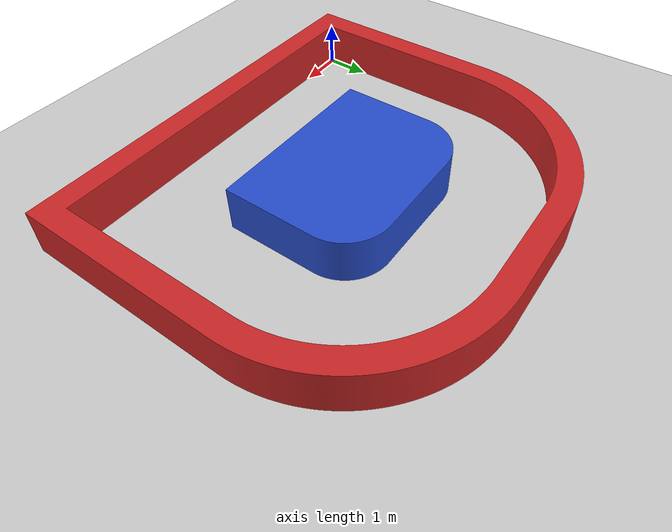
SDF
<sdf version='1.4'>
  <world name='default'>
    <!-- A global light source -->
    <include>
      <uri>model://sun</uri>
    </include>

    <!-- A ground plane -->
    <include>
      <uri>model://ground_plane</uri>
    </include>

    <physics type="ode">
      <real_time_update_rate>1000.0</real_time_update_rate>
      <max_step_size>0.001</max_step_size>
      <real_time_factor>1</real_time_factor>
      <ode>
        <solver>
          <type>quick</type>
          <iters>150</iters>
          <precon_iters>0</precon_iters>
          <sor>1.400000</sor>
          <use_dynamic_moi_rescaling>1</use_dynamic_moi_rescaling>
        </solver>
        <constraints>
          <cfm>0.00001</cfm>
          <erp>0.2</erp>
          <contact_max_correcting_vel>20.000000</contact_max_correcting_vel>
          <contact_surface_layer>0.01000</contact_surface_layer>
        </constraints>
      </ode>
    </physics>

    <!-- Inner and outer walls of the track -->

    <include>
      <uri>model://D_shape</uri>
    </include>

    <include>
      <uri>model://D_shape_hollow</uri>
    </include>

    <scene>
      <ambient>0.4 0.4 0.4 1</ambient>
      <background>0.7 0.7 0.7 1</background>
      <shadows>true</shadows>
    </scene>

    <gui fullscreen='0'>
      <camera name='user_camera'>
        <pose>0.8 0.0 12.0 0 1.5708 0</pose>
        <view_controller>orbit</view_controller>
      </camera>
    </gui>
  </world>
</sdf>

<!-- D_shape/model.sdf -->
<sdf version='1.4'>
    <model name='D_shape'>
      <static>1</static>
	<link name='symbol'>

        <collision name='body'>
        <pose>0 0 0 0 0 0</pose>
        <geometry>
          <mesh>
            <uri>model://D_shape/meshes/d_shape.dae</uri>
            <scale>1 1 1</scale>
          </mesh>
        </geometry>
        <max_contacts>10</max_contacts>
        <surface>
          <bounce/>
          <friction>
            <ode/>
          </friction>
          <contact>
            <ode/>
          </contact>
        </surface>
      </collision>

      <visual name='body'>
        <pose>0 0 0 0 0 0</pose>
        <geometry>
          <mesh>
            <uri>model://D_shape/meshes/d_shape.dae</uri>
            <scale>1 1 1</scale>
          </mesh>
        </geometry>
        <material>
          <script>
            <uri>file://media/materials/scripts/gazebo.material</uri>
            <name>Gazebo/Blue</name>
          </script>
        </material>
      </visual>
    </link>
  </model>
</sdf>

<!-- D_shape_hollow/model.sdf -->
<sdf version='1.4'>
    <model name='D_shape'>
      <static>1</static>
	<link name='symbol'>

        <collision name='body'>
        <pose>0 0 0 0 0 0</pose>
        <geometry>
          <mesh>
            <uri>model://D_shape_hollow/meshes/d_shape_hollow.dae</uri>
            <scale>1 1 1</scale>
          </mesh>
        </geometry>
        <max_contacts>10</max_contacts>
        <surface>
          <bounce/>
          <friction>
            <ode/>
          </friction>
          <contact>
            <ode/>
          </contact>
        </surface>
      </collision>

      <visual name='body'>
        <pose>0 0 0 0 0 0</pose>
        <geometry>
          <mesh>
            <uri>model://D_shape_hollow/meshes/d_shape_hollow.dae</uri>
            <scale>1 1 1</scale>
          </mesh>
        </geometry>
        <material>
          <script>
            <uri>file://media/materials/scripts/gazebo.material</uri>
            <name>Gazebo/Red</name>
          </script>
        </material>
      </visual>
    </link>
  </model>
</sdf>
